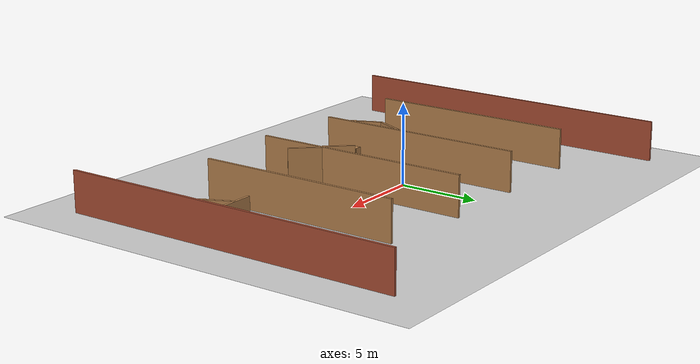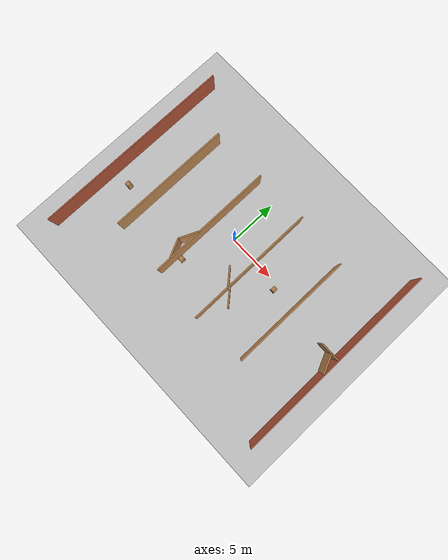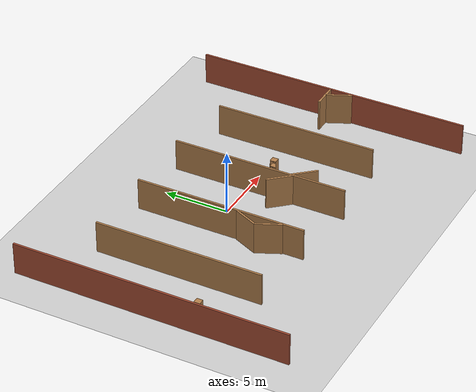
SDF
<sdf version="1.6">
 <world name="default">
  <model name="ground_plane">
   <static>1</static>
   <link name="link">
    <collision name="collision">
     <geometry><plane><normal>0 0 1</normal><size>100 100</size></plane></geometry>
     <surface><friction><ode><mu>100</mu><mu2>50</mu2></ode></friction></surface>
    </collision>
    <visual name="visual">
     <cast_shadows>0</cast_shadows>
     <geometry><plane><normal>0 0 1</normal><size>100 100</size></plane></geometry>
     <material>
      <script><uri>file://media/materials/scripts/gazebo.material</uri><name>Gazebo/Grey</name></script>
     </material>
    </visual>
   </link>
  </model>
  <model name="cabinet_0">
   <static>1</static>
   <link name="cabinet_bottom_plate">
    <inertial>
     <pose>0 0 -1 0 -0 0</pose>
     <inertia><ixx>2.05</ixx><ixy>0</ixy><ixz>0</ixz><iyy>2.05</iyy><iyz>0</iyz><izz>2.05</izz></inertia>
     <mass>25</mass>
    </inertial>
    <collision name="cabinet_bottom_plate_geom">
     <pose>0 0 0.01 0 -0 0</pose>
     <geometry><box><size>0.45 0.45 0.02</size></box></geometry>
    </collision>
    <visual name="cabinet_bottom_plate_geom_visual">
     <pose>0 0 0.01 0 -0 0</pose>
     <geometry><box><size>0.45 0.45 0.02</size></box></geometry>
     <material>
      <script><uri>file://media/materials/scripts/gazebo.material</uri><name>Gazebo/Wood</name></script>
     </material>
    </visual>
    <collision name="cabinet_bottom_plate_geom_cabinet_back_plate">
     <pose>0.235 0 0.51 0 -0 0</pose>
     <geometry><box><size>0.02 0.45 1.02</size></box></geometry>
    </collision>
    <visual name="cabinet_bottom_plate_geom_cabinet_back_plate_visual">
     <pose>0.235 0 0.51 0 -0 0</pose>
     <geometry><box><size>0.02 0.45 1.02</size></box></geometry>
     <material>
      <script><uri>file://media/materials/scripts/gazebo.material</uri><name>Gazebo/Wood</name></script>
     </material>
    </visual>
    <collision name="cabinet_bottom_plate_geom_cabinet_left_plate">
     <pose>0 0.235 0.51 0 -0 0</pose>
     <geometry><box><size>0.45 0.02 1.02</size></box></geometry>
    </collision>
    <visual name="cabinet_bottom_plate_geom_cabinet_left_plate_visual">
     <pose>0 0.235 0.51 0 -0 0</pose>
     <geometry><box><size>0.45 0.02 1.02</size></box></geometry>
     <material>
      <script><uri>file://media/materials/scripts/gazebo.material</uri><name>Gazebo/Wood</name></script>
     </material>
    </visual>
    <collision name="cabinet_bottom_plate_geom_cabinet_middle_plate">
     <pose>0 0 0.51 0 -0 0</pose>
     <geometry><box><size>0.45 0.45 0.02</size></box></geometry>
    </collision>
    <visual name="cabinet_bottom_plate_geom_cabinet_middle_plate_visual">
     <pose>0 0 0.51 0 -0 0</pose>
     <geometry><box><size>0.45 0.45 0.02</size></box></geometry>
     <material>
      <script><uri>file://media/materials/scripts/gazebo.material</uri><name>Gazebo/Wood</name></script>
     </material>
    </visual>
    <collision name="cabinet_bottom_plate_geom_cabinet_right_plate">
     <pose>0 -0.235 0.51 0 -0 0</pose>
     <geometry><box><size>0.45 0.02 1.02</size></box></geometry>
    </collision>
    <visual name="cabinet_bottom_plate_geom_cabinet_right_plate_visual">
     <pose>0 -0.235 0.51 0 -0 0</pose>
     <geometry><box><size>0.45 0.02 1.02</size></box></geometry>
     <material>
      <script><uri>file://media/materials/scripts/gazebo.material</uri><name>Gazebo/Wood</name></script>
     </material>
    </visual>
    <collision name="cabinet_bottom_plate_geom_cabinet_top_plate">
     <pose>0 0 1.01 0 -0 0</pose>
     <geometry><box><size>0.45 0.45 0.02</size></box></geometry>
    </collision>
    <visual name="cabinet_bottom_plate_geom_cabinet_top_plate_visual">
     <pose>0 0 1.01 0 -0 0</pose>
     <geometry><box><size>0.45 0.45 0.02</size></box></geometry>
     <material>
      <script><uri>file://media/materials/scripts/gazebo.material</uri><name>Gazebo/Wood</name></script>
     </material>
    </visual>
   </link>
   <pose>-11.2005 -3.85299 0 0 -0 0</pose>
  </model>
  <model name="cabinet_1">
   <static>1</static>
   <link name="cabinet_bottom_plate">
    <inertial>
     <pose>0 0 -1 0 -0 0</pose>
     <inertia><ixx>2.05</ixx><ixy>0</ixy><ixz>0</ixz><iyy>2.05</iyy><iyz>0</iyz><izz>2.05</izz></inertia>
     <mass>25</mass>
    </inertial>
    <collision name="cabinet_bottom_plate_geom">
     <pose>0 0 0.01 0 -0 0</pose>
     <geometry><box><size>0.45 0.45 0.02</size></box></geometry>
    </collision>
    <visual name="cabinet_bottom_plate_geom_visual">
     <pose>0 0 0.01 0 -0 0</pose>
     <geometry><box><size>0.45 0.45 0.02</size></box></geometry>
     <material>
      <script><uri>file://media/materials/scripts/gazebo.material</uri><name>Gazebo/Wood</name></script>
     </material>
    </visual>
    <collision name="cabinet_bottom_plate_geom_cabinet_back_plate">
     <pose>0.235 0 0.51 0 -0 0</pose>
     <geometry><box><size>0.02 0.45 1.02</size></box></geometry>
    </collision>
    <visual name="cabinet_bottom_plate_geom_cabinet_back_plate_visual">
     <pose>0.235 0 0.51 0 -0 0</pose>
     <geometry><box><size>0.02 0.45 1.02</size></box></geometry>
     <material>
      <script><uri>file://media/materials/scripts/gazebo.material</uri><name>Gazebo/Wood</name></script>
     </material>
    </visual>
    <collision name="cabinet_bottom_plate_geom_cabinet_left_plate">
     <pose>0 0.235 0.51 0 -0 0</pose>
     <geometry><box><size>0.45 0.02 1.02</size></box></geometry>
    </collision>
    <visual name="cabinet_bottom_plate_geom_cabinet_left_plate_visual">
     <pose>0 0.235 0.51 0 -0 0</pose>
     <geometry><box><size>0.45 0.02 1.02</size></box></geometry>
     <material>
      <script><uri>file://media/materials/scripts/gazebo.material</uri><name>Gazebo/Wood</name></script>
     </material>
    </visual>
    <collision name="cabinet_bottom_plate_geom_cabinet_middle_plate">
     <pose>0 0 0.51 0 -0 0</pose>
     <geometry><box><size>0.45 0.45 0.02</size></box></geometry>
    </collision>
    <visual name="cabinet_bottom_plate_geom_cabinet_middle_plate_visual">
     <pose>0 0 0.51 0 -0 0</pose>
     <geometry><box><size>0.45 0.45 0.02</size></box></geometry>
     <material>
      <script><uri>file://media/materials/scripts/gazebo.material</uri><name>Gazebo/Wood</name></script>
     </material>
    </visual>
    <collision name="cabinet_bottom_plate_geom_cabinet_right_plate">
     <pose>0 -0.235 0.51 0 -0 0</pose>
     <geometry><box><size>0.45 0.02 1.02</size></box></geometry>
    </collision>
    <visual name="cabinet_bottom_plate_geom_cabinet_right_plate_visual">
     <pose>0 -0.235 0.51 0 -0 0</pose>
     <geometry><box><size>0.45 0.02 1.02</size></box></geometry>
     <material>
      <script><uri>file://media/materials/scripts/gazebo.material</uri><name>Gazebo/Wood</name></script>
     </material>
    </visual>
    <collision name="cabinet_bottom_plate_geom_cabinet_top_plate">
     <pose>0 0 1.01 0 -0 0</pose>
     <geometry><box><size>0.45 0.45 0.02</size></box></geometry>
    </collision>
    <visual name="cabinet_bottom_plate_geom_cabinet_top_plate_visual">
     <pose>0 0 1.01 0 -0 0</pose>
     <geometry><box><size>0.45 0.45 0.02</size></box></geometry>
     <material>
      <script><uri>file://media/materials/scripts/gazebo.material</uri><name>Gazebo/Wood</name></script>
     </material>
    </visual>
   </link>
   <pose>6.15971 -0.636203 0 0 -0 0</pose>
  </model>
  <model name="cabinet_4">
   <static>1</static>
   <link name="cabinet_bottom_plate">
    <inertial>
     <pose>0 0 -1 0 -0 0</pose>
     <inertia><ixx>2.05</ixx><ixy>0</ixy><ixz>0</ixz><iyy>2.05</iyy><iyz>0</iyz><izz>2.05</izz></inertia>
     <mass>25</mass>
    </inertial>
    <collision name="cabinet_bottom_plate_geom">
     <pose>0 0 0.01 0 -0 0</pose>
     <geometry><box><size>0.45 0.45 0.02</size></box></geometry>
    </collision>
    <visual name="cabinet_bottom_plate_geom_visual">
     <pose>0 0 0.01 0 -0 0</pose>
     <geometry><box><size>0.45 0.45 0.02</size></box></geometry>
     <material>
      <script><uri>file://media/materials/scripts/gazebo.material</uri><name>Gazebo/Wood</name></script>
     </material>
    </visual>
    <collision name="cabinet_bottom_plate_geom_cabinet_back_plate">
     <pose>0.235 0 0.51 0 -0 0</pose>
     <geometry><box><size>0.02 0.45 1.02</size></box></geometry>
    </collision>
    <visual name="cabinet_bottom_plate_geom_cabinet_back_plate_visual">
     <pose>0.235 0 0.51 0 -0 0</pose>
     <geometry><box><size>0.02 0.45 1.02</size></box></geometry>
     <material>
      <script><uri>file://media/materials/scripts/gazebo.material</uri><name>Gazebo/Wood</name></script>
     </material>
    </visual>
    <collision name="cabinet_bottom_plate_geom_cabinet_left_plate">
     <pose>0 0.235 0.51 0 -0 0</pose>
     <geometry><box><size>0.45 0.02 1.02</size></box></geometry>
    </collision>
    <visual name="cabinet_bottom_plate_geom_cabinet_left_plate_visual">
     <pose>0 0.235 0.51 0 -0 0</pose>
     <geometry><box><size>0.45 0.02 1.02</size></box></geometry>
     <material>
      <script><uri>file://media/materials/scripts/gazebo.material</uri><name>Gazebo/Wood</name></script>
     </material>
    </visual>
    <collision name="cabinet_bottom_plate_geom_cabinet_middle_plate">
     <pose>0 0 0.51 0 -0 0</pose>
     <geometry><box><size>0.45 0.45 0.02</size></box></geometry>
    </collision>
    <visual name="cabinet_bottom_plate_geom_cabinet_middle_plate_visual">
     <pose>0 0 0.51 0 -0 0</pose>
     <geometry><box><size>0.45 0.45 0.02</size></box></geometry>
     <material>
      <script><uri>file://media/materials/scripts/gazebo.material</uri><name>Gazebo/Wood</name></script>
     </material>
    </visual>
    <collision name="cabinet_bottom_plate_geom_cabinet_right_plate">
     <pose>0 -0.235 0.51 0 -0 0</pose>
     <geometry><box><size>0.45 0.02 1.02</size></box></geometry>
    </collision>
    <visual name="cabinet_bottom_plate_geom_cabinet_right_plate_visual">
     <pose>0 -0.235 0.51 0 -0 0</pose>
     <geometry><box><size>0.45 0.02 1.02</size></box></geometry>
     <material>
      <script><uri>file://media/materials/scripts/gazebo.material</uri><name>Gazebo/Wood</name></script>
     </material>
    </visual>
    <collision name="cabinet_bottom_plate_geom_cabinet_top_plate">
     <pose>0 0 1.01 0 -0 0</pose>
     <geometry><box><size>0.45 0.45 0.02</size></box></geometry>
    </collision>
    <visual name="cabinet_bottom_plate_geom_cabinet_top_plate_visual">
     <pose>0 0 1.01 0 -0 0</pose>
     <geometry><box><size>0.45 0.45 0.02</size></box></geometry>
     <material>
      <script><uri>file://media/materials/scripts/gazebo.material</uri><name>Gazebo/Wood</name></script>
     </material>
    </visual>
   </link>
   <pose>-2.09099 -5.06294 0 0 -0 0</pose>
  </model>
  <model name="test_maze">
   <link name="Wall_118">
    <pose>-3.51482 -1.01293 0 0 -0 1.5708</pose>
    <visual name="Wall_118_Visual">
     <pose>0 0 1.25 0 -0 0</pose>
     <geometry><box><size>13.25 0.15 2.5</size></box></geometry>
     <material>
      <script><uri>file://media/materials/scripts/gazebo.material</uri><name>Gazebo/Wood</name></script>
      <ambient>1 1 1 1</ambient>
      <shader type="pixel"/>
     </material>
     <meta><layer>0</layer></meta>
    </visual>
    <collision name="Wall_118_Collision">
     <pose>0 0 1.25 0 -0 0</pose>
     <geometry><box><size>13.25 0.15 2.5</size></box></geometry>
     <surface>
      <friction>
       <ode><mu>1</mu><mu2>1</mu2><fdir1>0 0 0</fdir1><slip1>0</slip1><slip2>0</slip2></ode>
       <torsional>
        <coefficient>1</coefficient>
        <patch_radius>0</patch_radius>
        <surface_radius>0</surface_radius>
        <use_patch_radius>1</use_patch_radius>
        <ode><slip>0</slip></ode>
       </torsional>
      </friction>
      <bounce><restitution_coefficient>0</restitution_coefficient><threshold>1e+06</threshold></bounce>
      <contact>
       <collide_without_contact>0</collide_without_contact>
       <collide_without_contact_bitmask>1</collide_without_contact_bitmask>
       <collide_bitmask>1</collide_bitmask>
       <ode>
        <soft_cfm>0</soft_cfm>
        <soft_erp>0.2</soft_erp>
        <kp>1e+13</kp>
        <kd>1</kd>
        <max_vel>0.01</max_vel>
        <min_depth>0</min_depth>
       </ode>
       <bullet>
        <split_impulse>1</split_impulse>
        <split_impulse_penetration_threshold>-0.01</split_impulse_penetration_threshold>
        <soft_cfm>0</soft_cfm>
        <soft_erp>0.2</soft_erp>
        <kp>1e+13</kp>
        <kd>1</kd>
       </bullet>
      </contact>
     </surface>
    </collision>
   </link>
   <link name="Wall_120">
    <pose>-9.3589 -0.921485 0 0 -0 1.5708</pose>
    <visual name="Wall_120_Visual">
     <pose>0 0 1.25 0 -0 0</pose>
     <geometry><box><size>13 0.15 2.5</size></box></geometry>
     <material>
      <script><uri>file://media/materials/scripts/gazebo.material</uri><name>Gazebo/Wood</name></script>
      <ambient>1 1 1 1</ambient>
      <shader type="pixel"/>
     </material>
     <meta><layer>0</layer></meta>
    </visual>
    <collision name="Wall_120_Collision">
     <pose>0 0 1.25 0 -0 0</pose>
     <geometry><box><size>13 0.15 2.5</size></box></geometry>
     <surface>
      <friction>
       <ode><mu>1</mu><mu2>1</mu2><fdir1>0 0 0</fdir1><slip1>0</slip1><slip2>0</slip2></ode>
       <torsional>
        <coefficient>1</coefficient>
        <patch_radius>0</patch_radius>
        <surface_radius>0</surface_radius>
        <use_patch_radius>1</use_patch_radius>
        <ode><slip>0</slip></ode>
       </torsional>
      </friction>
      <bounce><restitution_coefficient>0</restitution_coefficient><threshold>1e+06</threshold></bounce>
      <contact>
       <collide_without_contact>0</collide_without_contact>
       <collide_without_contact_bitmask>1</collide_without_contact_bitmask>
       <collide_bitmask>1</collide_bitmask>
       <ode>
        <soft_cfm>0</soft_cfm>
        <soft_erp>0.2</soft_erp>
        <kp>1e+13</kp>
        <kd>1</kd>
        <max_vel>0.01</max_vel>
        <min_depth>0</min_depth>
       </ode>
       <bullet>
        <split_impulse>1</split_impulse>
        <split_impulse_penetration_threshold>-0.01</split_impulse_penetration_threshold>
        <soft_cfm>0</soft_cfm>
        <soft_erp>0.2</soft_erp>
        <kp>1e+13</kp>
        <kd>1</kd>
       </bullet>
      </contact>
     </surface>
    </collision>
   </link>
   <link name="Wall_125">
    <pose>2.11282 -1.19583 0 0 -0 1.5708</pose>
    <visual name="Wall_125_Visual">
     <pose>0 0 1.25 0 -0 0</pose>
     <geometry><box><size>13.75 0.15 2.5</size></box></geometry>
     <material>
      <script><uri>file://media/materials/scripts/gazebo.material</uri><name>Gazebo/Wood</name></script>
      <ambient>1 1 1 1</ambient>
      <shader type="pixel"/>
     </material>
     <meta><layer>0</layer></meta>
    </visual>
    <collision name="Wall_125_Collision">
     <pose>0 0 1.25 0 -0 0</pose>
     <geometry><box><size>13.75 0.15 2.5</size></box></geometry>
     <surface>
      <friction>
       <ode><mu>1</mu><mu2>1</mu2><fdir1>0 0 0</fdir1><slip1>0</slip1><slip2>0</slip2></ode>
       <torsional>
        <coefficient>1</coefficient>
        <patch_radius>0</patch_radius>
        <surface_radius>0</surface_radius>
        <use_patch_radius>1</use_patch_radius>
        <ode><slip>0</slip></ode>
       </torsional>
      </friction>
      <bounce><restitution_coefficient>0</restitution_coefficient><threshold>1e+06</threshold></bounce>
      <contact>
       <collide_without_contact>0</collide_without_contact>
       <collide_without_contact_bitmask>1</collide_without_contact_bitmask>
       <collide_bitmask>1</collide_bitmask>
       <ode>
        <soft_cfm>0</soft_cfm>
        <soft_erp>0.2</soft_erp>
        <kp>1e+13</kp>
        <kd>1</kd>
        <max_vel>0.01</max_vel>
        <min_depth>0</min_depth>
       </ode>
       <bullet>
        <split_impulse>1</split_impulse>
        <split_impulse_penetration_threshold>-0.01</split_impulse_penetration_threshold>
        <soft_cfm>0</soft_cfm>
        <soft_erp>0.2</soft_erp>
        <kp>1e+13</kp>
        <kd>1</kd>
       </bullet>
      </contact>
     </surface>
    </collision>
   </link>
   <link name="Wall_127">
    <pose>7.74045 -1.26293 0 0 -0 1.5708</pose>
    <visual name="Wall_127_Visual">
     <pose>0 0 1.25 0 -0 0</pose>
     <geometry><box><size>12.75 0.15 2.5</size></box></geometry>
     <material>
      <script><uri>file://media/materials/scripts/gazebo.material</uri><name>Gazebo/Wood</name></script>
      <ambient>1 1 1 1</ambient>
      <shader type="pixel"/>
     </material>
     <meta><layer>0</layer></meta>
    </visual>
    <collision name="Wall_127_Collision">
     <pose>0 0 1.25 0 -0 0</pose>
     <geometry><box><size>12.75 0.15 2.5</size></box></geometry>
     <surface>
      <friction>
       <ode><mu>1</mu><mu2>1</mu2><fdir1>0 0 0</fdir1><slip1>0</slip1><slip2>0</slip2></ode>
       <torsional>
        <coefficient>1</coefficient>
        <patch_radius>0</patch_radius>
        <surface_radius>0</surface_radius>
        <use_patch_radius>1</use_patch_radius>
        <ode><slip>0</slip></ode>
       </torsional>
      </friction>
      <bounce><restitution_coefficient>0</restitution_coefficient><threshold>1e+06</threshold></bounce>
      <contact>
       <collide_without_contact>0</collide_without_contact>
       <collide_without_contact_bitmask>1</collide_without_contact_bitmask>
       <collide_bitmask>1</collide_bitmask>
       <ode>
        <soft_cfm>0</soft_cfm>
        <soft_erp>0.2</soft_erp>
        <kp>1e+13</kp>
        <kd>1</kd>
        <max_vel>0.01</max_vel>
        <min_depth>0</min_depth>
       </ode>
       <bullet>
        <split_impulse>1</split_impulse>
        <split_impulse_penetration_threshold>-0.01</split_impulse_penetration_threshold>
        <soft_cfm>0</soft_cfm>
        <soft_erp>0.2</soft_erp>
        <kp>1e+13</kp>
        <kd>1</kd>
       </bullet>
      </contact>
     </surface>
    </collision>
   </link>
   <link name="Wall_43">
    <pose>13.7561 -1.325 0 0 -0 1.5708</pose>
    <visual name="Wall_43_Visual">
     <pose>0 0 1.25 0 -0 0</pose>
     <geometry><box><size>21.75 0.15 2.5</size></box></geometry>
     <material>
      <script><uri>file://media/materials/scripts/gazebo.material</uri><name>Gazebo/Bricks</name></script>
      <ambient>1 1 1 1</ambient>
      <shader type="pixel"/>
     </material>
     <meta><layer>0</layer></meta>
    </visual>
    <collision name="Wall_43_Collision">
     <pose>0 0 1.25 0 -0 0</pose>
     <geometry><box><size>21.75 0.15 2.5</size></box></geometry>
     <surface>
      <friction>
       <ode><mu>1</mu><mu2>1</mu2><fdir1>0 0 0</fdir1><slip1>0</slip1><slip2>0</slip2></ode>
       <torsional>
        <coefficient>1</coefficient>
        <patch_radius>0</patch_radius>
        <surface_radius>0</surface_radius>
        <use_patch_radius>1</use_patch_radius>
        <ode><slip>0</slip></ode>
       </torsional>
      </friction>
      <bounce><restitution_coefficient>0</restitution_coefficient><threshold>1e+06</threshold></bounce>
      <contact>
       <collide_without_contact>0</collide_without_contact>
       <collide_without_contact_bitmask>1</collide_without_contact_bitmask>
       <collide_bitmask>1</collide_bitmask>
       <ode>
        <soft_cfm>0</soft_cfm>
        <soft_erp>0.2</soft_erp>
        <kp>1e+13</kp>
        <kd>1</kd>
        <max_vel>0.01</max_vel>
        <min_depth>0</min_depth>
       </ode>
       <bullet>
        <split_impulse>1</split_impulse>
        <split_impulse_penetration_threshold>-0.01</split_impulse_penetration_threshold>
        <soft_cfm>0</soft_cfm>
        <soft_erp>0.2</soft_erp>
        <kp>1e+13</kp>
        <kd>1</kd>
       </bullet>
      </contact>
     </surface>
    </collision>
   </link>
   <link name="Wall_53">
    <pose>-14.1439 -1.325 0 0 -0 1.5708</pose>
    <visual name="Wall_53_Visual">
     <pose>0 0 1.25 0 -0 0</pose>
     <geometry><box><size>21.25 0.15 2.5</size></box></geometry>
     <material>
      <script><uri>file://media/materials/scripts/gazebo.material</uri><name>Gazebo/Bricks</name></script>
      <ambient>1 1 1 1</ambient>
      <shader type="pixel"/>
     </material>
     <meta><layer>0</layer></meta>
    </visual>
    <collision name="Wall_53_Collision">
     <pose>0 0 1.25 0 -0 0</pose>
     <geometry><box><size>21.25 0.15 2.5</size></box></geometry>
     <surface>
      <friction>
       <ode><mu>1</mu><mu2>1</mu2><fdir1>0 0 0</fdir1><slip1>0</slip1><slip2>0</slip2></ode>
       <torsional>
        <coefficient>1</coefficient>
        <patch_radius>0</patch_radius>
        <surface_radius>0</surface_radius>
        <use_patch_radius>1</use_patch_radius>
        <ode><slip>0</slip></ode>
       </torsional>
      </friction>
      <bounce><restitution_coefficient>0</restitution_coefficient><threshold>1e+06</threshold></bounce>
      <contact>
       <collide_without_contact>0</collide_without_contact>
       <collide_without_contact_bitmask>1</collide_without_contact_bitmask>
       <collide_bitmask>1</collide_bitmask>
       <ode>
        <soft_cfm>0</soft_cfm>
        <soft_erp>0.2</soft_erp>
        <kp>1e+13</kp>
        <kd>1</kd>
        <max_vel>0.01</max_vel>
        <min_depth>0</min_depth>
       </ode>
       <bullet>
        <split_impulse>1</split_impulse>
        <split_impulse_penetration_threshold>-0.01</split_impulse_penetration_threshold>
        <soft_cfm>0</soft_cfm>
        <soft_erp>0.2</soft_erp>
        <kp>1e+13</kp>
        <kd>1</kd>
       </bullet>
      </contact>
     </surface>
    </collision>
   </link>
   <link name="Wall_96_clone_0_clone_clone_clone">
    <pose>-3.98276 -3.32286 0 0 0 -2</pose>
    <inertial>
     <mass>1</mass>
     <inertia><ixx>1</ixx><ixy>0</ixy><ixz>0</ixz><iyy>1</iyy><iyz>0</iyz><izz>1</izz></inertia>
    </inertial>
    <visual name="Wall_96_Visual">
     <pose>0 0 1.25 0 -0 0</pose>
     <geometry><box><size>2.0055 0.15 2.5</size></box></geometry>
     <material>
      <script><uri>file://media/materials/scripts/gazebo.material</uri><name>Gazebo/Wood</name></script>
      <ambient>1 1 1 1</ambient>
      <shader type="pixel"><normal_map>__default__</normal_map></shader>
      <diffuse>1 1 1 1</diffuse>
      <specular>0.2 0.2 0.2 1</specular>
      <emissive>0 0 0 1</emissive>
     </material>
     <meta><layer>0</layer></meta>
    </visual>
    <collision name="Wall_96_Collision">
     <pose>0 0 1.25 0 -0 0</pose>
     <geometry><box><size>2.0055 0.15 2.5</size></box></geometry>
     <surface>
      <friction>
       <ode><mu>1</mu><mu2>1</mu2><fdir1>0 0 0</fdir1><slip1>0</slip1><slip2>0</slip2></ode>
       <torsional>
        <coefficient>1</coefficient>
        <patch_radius>0</patch_radius>
        <surface_radius>0</surface_radius>
        <use_patch_radius>1</use_patch_radius>
        <ode><slip>0</slip></ode>
       </torsional>
      </friction>
      <bounce><restitution_coefficient>0</restitution_coefficient><threshold>1e+06</threshold></bounce>
      <contact>
       <collide_without_contact>0</collide_without_contact>
       <collide_without_contact_bitmask>1</collide_without_contact_bitmask>
       <collide_bitmask>1</collide_bitmask>
       <ode>
        <soft_cfm>0</soft_cfm>
        <soft_erp>0.2</soft_erp>
        <kp>1e+13</kp>
        <kd>1</kd>
        <max_vel>0.01</max_vel>
        <min_depth>0</min_depth>
       </ode>
       <bullet>
        <split_impulse>1</split_impulse>
        <split_impulse_penetration_threshold>-0.01</split_impulse_penetration_threshold>
        <soft_cfm>0</soft_cfm>
        <soft_erp>0.2</soft_erp>
        <kp>1e+13</kp>
        <kd>1</kd>
       </bullet>
      </contact>
     </surface>
    </collision>
   </link>
   <link name="Wall_96_clone_0_clone_clone_clone_clone_clone">
    <pose>-3.99151 -5.11547 0 0 -0 2</pose>
    <inertial>
     <mass>1</mass>
     <inertia><ixx>1</ixx><ixy>0</ixy><ixz>0</ixz><iyy>1</iyy><iyz>0</iyz><izz>1</izz></inertia>
    </inertial>
    <visual name="Wall_96_Visual">
     <pose>0 0 1.25 0 -0 0</pose>
     <geometry><box><size>2.0055 0.15 2.5</size></box></geometry>
     <material>
      <script><uri>file://media/materials/scripts/gazebo.material</uri><name>Gazebo/Wood</name></script>
      <ambient>1 1 1 1</ambient>
      <shader type="pixel"><normal_map>__default__</normal_map></shader>
      <diffuse>1 1 1 1</diffuse>
      <specular>0.2 0.2 0.2 1</specular>
      <emissive>0 0 0 1</emissive>
     </material>
     <meta><layer>0</layer></meta>
    </visual>
    <collision name="Wall_96_Collision">
     <pose>0 0 1.25 0 -0 0</pose>
     <geometry><box><size>2.0055 0.15 2.5</size></box></geometry>
     <surface>
      <friction>
       <ode><mu>1</mu><mu2>1</mu2><fdir1>0 0 0</fdir1><slip1>0</slip1><slip2>0</slip2></ode>
       <torsional>
        <coefficient>1</coefficient>
        <patch_radius>0</patch_radius>
        <surface_radius>0</surface_radius>
        <use_patch_radius>1</use_patch_radius>
        <ode><slip>0</slip></ode>
       </torsional>
      </friction>
      <bounce><restitution_coefficient>0</restitution_coefficient><threshold>1e+06</threshold></bounce>
      <contact>
       <collide_without_contact>0</collide_without_contact>
       <collide_without_contact_bitmask>1</collide_without_contact_bitmask>
       <collide_bitmask>1</collide_bitmask>
       <ode>
        <soft_cfm>0</soft_cfm>
        <soft_erp>0.2</soft_erp>
        <kp>1e+13</kp>
        <kd>1</kd>
        <max_vel>0.01</max_vel>
        <min_depth>0</min_depth>
       </ode>
       <bullet>
        <split_impulse>1</split_impulse>
        <split_impulse_penetration_threshold>-0.01</split_impulse_penetration_threshold>
        <soft_cfm>0</soft_cfm>
        <soft_erp>0.2</soft_erp>
        <kp>1e+13</kp>
        <kd>1</kd>
       </bullet>
      </contact>
     </surface>
    </collision>
   </link>
   <link name="Wall_96_clone_0_clone_clone_clone_clone_clone_clone_clone_0_clone">
    <pose>13.2653 -2.19534 0 0 -0 2</pose>
    <inertial>
     <mass>1</mass>
     <inertia><ixx>1</ixx><ixy>0</ixy><ixz>0</ixz><iyy>1</iyy><iyz>0</iyz><izz>1</izz></inertia>
    </inertial>
    <visual name="Wall_96_Visual">
     <pose>0 0 1.25 0 -0 0</pose>
     <geometry><box><size>2.0055 0.15 2.5</size></box></geometry>
     <material>
      <script><uri>file://media/materials/scripts/gazebo.material</uri><name>Gazebo/Wood</name></script>
      <ambient>1 1 1 1</ambient>
      <shader type="pixel"><normal_map>__default__</normal_map></shader>
      <diffuse>1 1 1 1</diffuse>
      <specular>0.2 0.2 0.2 1</specular>
      <emissive>0 0 0 1</emissive>
     </material>
     <meta><layer>0</layer></meta>
    </visual>
    <collision name="Wall_96_Collision">
     <pose>0 0 1.25 0 -0 0</pose>
     <geometry><box><size>2.0055 0.15 2.5</size></box></geometry>
     <surface>
      <friction>
       <ode><mu>1</mu><mu2>1</mu2><fdir1>0 0 0</fdir1><slip1>0</slip1><slip2>0</slip2></ode>
       <torsional>
        <coefficient>1</coefficient>
        <patch_radius>0</patch_radius>
        <surface_radius>0</surface_radius>
        <use_patch_radius>1</use_patch_radius>
        <ode><slip>0</slip></ode>
       </torsional>
      </friction>
      <bounce><restitution_coefficient>0</restitution_coefficient><threshold>1e+06</threshold></bounce>
      <contact>
       <collide_without_contact>0</collide_without_contact>
       <collide_without_contact_bitmask>1</collide_without_contact_bitmask>
       <collide_bitmask>1</collide_bitmask>
       <ode>
        <soft_cfm>0</soft_cfm>
        <soft_erp>0.2</soft_erp>
        <kp>1e+13</kp>
        <kd>1</kd>
        <max_vel>0.01</max_vel>
        <min_depth>0</min_depth>
       </ode>
       <bullet>
        <split_impulse>1</split_impulse>
        <split_impulse_penetration_threshold>-0.01</split_impulse_penetration_threshold>
        <soft_cfm>0</soft_cfm>
        <soft_erp>0.2</soft_erp>
        <kp>1e+13</kp>
        <kd>1</kd>
       </bullet>
      </contact>
     </surface>
    </collision>
   </link>
   <link name="Wall_96_clone_1_clone_clone">
    <pose>1.40978 -3.20212 0 0 -0 2.3</pose>
    <inertial>
     <mass>1</mass>
     <inertia><ixx>1</ixx><ixy>0</ixy><ixz>0</ixz><iyy>1</iyy><iyz>0</iyz><izz>1</izz></inertia>
    </inertial>
    <visual name="Wall_96_Visual">
     <pose>0 0 1.25 0 -0 0</pose>
     <geometry><box><size>2.0055 0.15 2.5</size></box></geometry>
     <material>
      <script><uri>file://media/materials/scripts/gazebo.material</uri><name>Gazebo/Wood</name></script>
      <ambient>1 1 1 1</ambient>
      <shader type="pixel"><normal_map>__default__</normal_map></shader>
      <diffuse>1 1 1 1</diffuse>
      <specular>0.2 0.2 0.2 1</specular>
      <emissive>0 0 0 1</emissive>
     </material>
     <meta><layer>0</layer></meta>
    </visual>
    <collision name="Wall_96_Collision">
     <pose>0 0 1.25 0 -0 0</pose>
     <geometry><box><size>2.0055 0.15 2.5</size></box></geometry>
     <surface>
      <friction>
       <ode><mu>1</mu><mu2>1</mu2><fdir1>0 0 0</fdir1><slip1>0</slip1><slip2>0</slip2></ode>
       <torsional>
        <coefficient>1</coefficient>
        <patch_radius>0</patch_radius>
        <surface_radius>0</surface_radius>
        <use_patch_radius>1</use_patch_radius>
        <ode><slip>0</slip></ode>
       </torsional>
      </friction>
      <bounce><restitution_coefficient>0</restitution_coefficient><threshold>1e+06</threshold></bounce>
      <contact>
       <collide_without_contact>0</collide_without_contact>
       <collide_without_contact_bitmask>1</collide_without_contact_bitmask>
       <collide_bitmask>1</collide_bitmask>
       <ode>
        <soft_cfm>0</soft_cfm>
        <soft_erp>0.2</soft_erp>
        <kp>1e+13</kp>
        <kd>1</kd>
        <max_vel>0.01</max_vel>
        <min_depth>0</min_depth>
       </ode>
       <bullet>
        <split_impulse>1</split_impulse>
        <split_impulse_penetration_threshold>-0.01</split_impulse_penetration_threshold>
        <soft_cfm>0</soft_cfm>
        <soft_erp>0.2</soft_erp>
        <kp>1e+13</kp>
        <kd>1</kd>
       </bullet>
      </contact>
     </surface>
    </collision>
   </link>
   <link name="Wall_96_clone_1_clone_clone_0_clone_clone">
    <pose>12.7384 -1.28277 0 0 -0 0</pose>
    <inertial>
     <mass>1</mass>
     <inertia><ixx>1</ixx><ixy>0</ixy><ixz>0</ixz><iyy>1</iyy><iyz>0</iyz><izz>1</izz></inertia>
    </inertial>
    <visual name="Wall_96_Visual">
     <pose>0 0 1.25 0 -0 0</pose>
     <geometry><box><size>2.0055 0.15 2.5</size></box></geometry>
     <material>
      <script><uri>file://media/materials/scripts/gazebo.material</uri><name>Gazebo/Wood</name></script>
      <ambient>1 1 1 1</ambient>
      <shader type="pixel"><normal_map>__default__</normal_map></shader>
      <diffuse>1 1 1 1</diffuse>
      <specular>0.2 0.2 0.2 1</specular>
      <emissive>0 0 0 1</emissive>
     </material>
     <meta><layer>0</layer></meta>
    </visual>
    <collision name="Wall_96_Collision">
     <pose>0 0 1.25 0 -0 0</pose>
     <geometry><box><size>2.0055 0.15 2.5</size></box></geometry>
     <surface>
      <friction>
       <ode><mu>1</mu><mu2>1</mu2><fdir1>0 0 0</fdir1><slip1>0</slip1><slip2>0</slip2></ode>
       <torsional>
        <coefficient>1</coefficient>
        <patch_radius>0</patch_radius>
        <surface_radius>0</surface_radius>
        <use_patch_radius>1</use_patch_radius>
        <ode><slip>0</slip></ode>
       </torsional>
      </friction>
      <bounce><restitution_coefficient>0</restitution_coefficient><threshold>1e+06</threshold></bounce>
      <contact>
       <collide_without_contact>0</collide_without_contact>
       <collide_without_contact_bitmask>1</collide_without_contact_bitmask>
       <collide_bitmask>1</collide_bitmask>
       <ode>
        <soft_cfm>0</soft_cfm>
        <soft_erp>0.2</soft_erp>
        <kp>1e+13</kp>
        <kd>1</kd>
        <max_vel>0.01</max_vel>
        <min_depth>0</min_depth>
       </ode>
       <bullet>
        <split_impulse>1</split_impulse>
        <split_impulse_penetration_threshold>-0.01</split_impulse_penetration_threshold>
        <soft_cfm>0</soft_cfm>
        <soft_erp>0.2</soft_erp>
        <kp>1e+13</kp>
        <kd>1</kd>
       </bullet>
      </contact>
     </surface>
    </collision>
   </link>
   <link name="Wall_96_clone_1_clone_clone_1">
    <pose>2.83654 -4.54577 0 0 -0 2.3</pose>
    <inertial>
     <mass>1</mass>
     <inertia><ixx>1</ixx><ixy>0</ixy><ixz>0</ixz><iyy>1</iyy><iyz>0</iyz><izz>1</izz></inertia>
    </inertial>
    <visual name="Wall_96_Visual">
     <pose>0 0 1.25 0 -0 0</pose>
     <geometry><box><size>2.0055 0.15 2.5</size></box></geometry>
     <material>
      <script><uri>file://media/materials/scripts/gazebo.material</uri><name>Gazebo/Wood</name></script>
      <ambient>1 1 1 1</ambient>
      <shader type="pixel"><normal_map>__default__</normal_map></shader>
      <diffuse>1 1 1 1</diffuse>
      <specular>0.2 0.2 0.2 1</specular>
      <emissive>0 0 0 1</emissive>
     </material>
     <meta><layer>0</layer></meta>
    </visual>
    <collision name="Wall_96_Collision">
     <pose>0 0 1.25 0 -0 0</pose>
     <geometry><box><size>2.0055 0.15 2.5</size></box></geometry>
     <surface>
      <friction>
       <ode><mu>1</mu><mu2>1</mu2><fdir1>0 0 0</fdir1><slip1>0</slip1><slip2>0</slip2></ode>
       <torsional>
        <coefficient>1</coefficient>
        <patch_radius>0</patch_radius>
        <surface_radius>0</surface_radius>
        <use_patch_radius>1</use_patch_radius>
        <ode><slip>0</slip></ode>
       </torsional>
      </friction>
      <bounce><restitution_coefficient>0</restitution_coefficient><threshold>1e+06</threshold></bounce>
      <contact>
       <collide_without_contact>0</collide_without_contact>
       <collide_without_contact_bitmask>1</collide_without_contact_bitmask>
       <collide_bitmask>1</collide_bitmask>
       <ode>
        <soft_cfm>0</soft_cfm>
        <soft_erp>0.2</soft_erp>
        <kp>1e+13</kp>
        <kd>1</kd>
        <max_vel>0.01</max_vel>
        <min_depth>0</min_depth>
       </ode>
       <bullet>
        <split_impulse>1</split_impulse>
        <split_impulse_penetration_threshold>-0.01</split_impulse_penetration_threshold>
        <soft_cfm>0</soft_cfm>
        <soft_erp>0.2</soft_erp>
        <kp>1e+13</kp>
        <kd>1</kd>
       </bullet>
      </contact>
     </surface>
    </collision>
   </link>
   <static>1</static>
   <pose>0.982774 0.2292 0 0 -0 0</pose>
  </model>
 </world>
</sdf>
